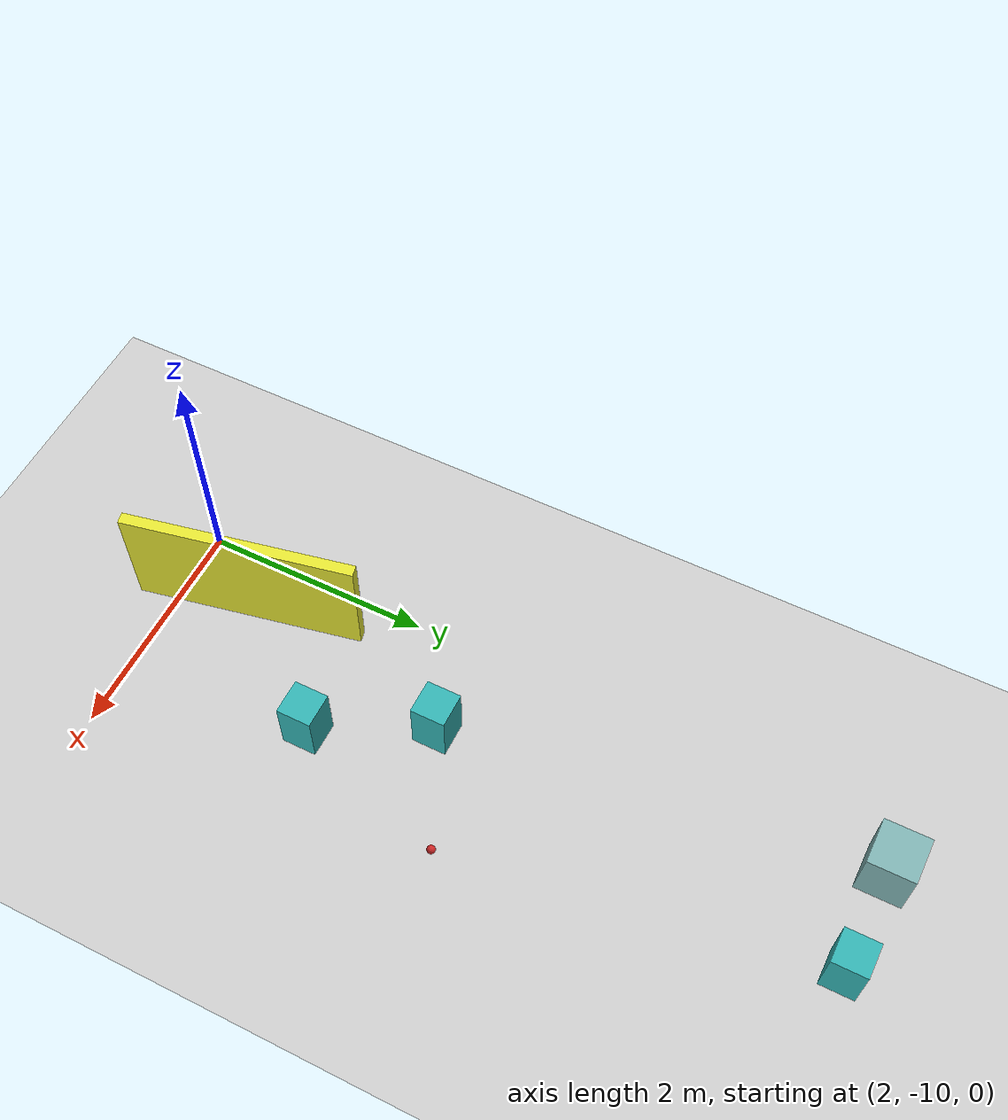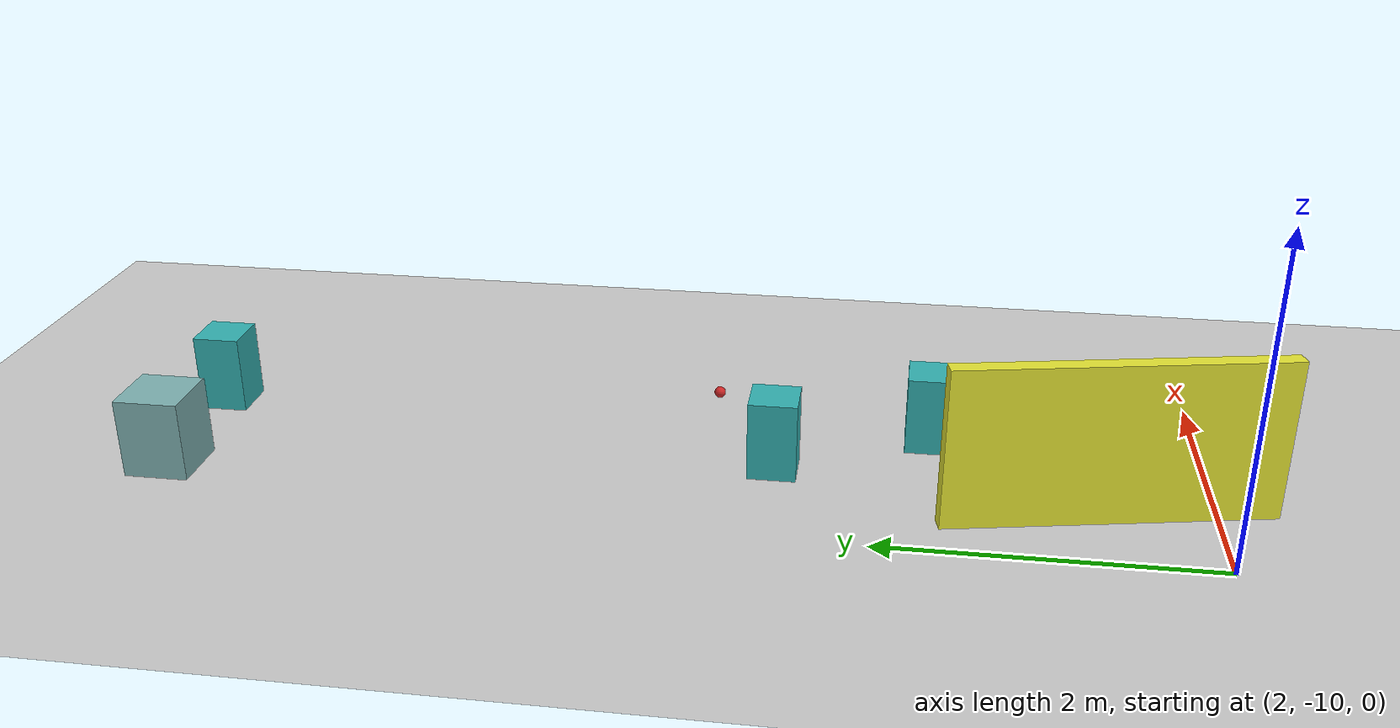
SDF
<sdf version="1.7">
 <world name="default">
  <model name="ground_plane">
   <static>1</static>
   <link name="link">
    <collision name="collision">
     <geometry><plane><normal>0 0 1</normal><size>100 100</size></plane></geometry>
     <surface><friction><ode><mu>100</mu><mu2>50</mu2></ode></friction></surface>
    </collision>
    <visual name="visual">
     <cast_shadows>0</cast_shadows>
     <geometry><plane><normal>0 0 1</normal><size>100 100</size></plane></geometry>
     <material>
      <script><uri>file://media/materials/scripts/gazebo.material</uri><name>Gazebo/Grey</name></script>
     </material>
    </visual>
   </link>
  </model>
  <model name="fl4sr_real_arena_8_target">
   <model name="target_ball_2">
    <link name="link">
     <pose>0 0 0.0375 0 -0 0</pose>
     <inertial>
      <mass>0.1467</mass>
      <inertia>
       <ixx>8.25187e-05</ixx>
       <ixy>0</ixy>
       <ixz>0</ixz>
       <iyy>8.25187e-05</iyy>
       <iyz>0</iyz>
       <izz>8.25187e-05</izz>
      </inertia>
     </inertial>
     <velocity_decay><linear>0</linear><angular>0.005</angular></velocity_decay>
     <visual name="visual">
      <geometry><sphere><radius>0.0375</radius></sphere></geometry>
      <material>
       <script><uri>file://media/materials/scripts/gazebo.material</uri><name>Gazebo/Red</name></script>
       <shader type="pixel"/>
      </material>
     </visual>
     <collision name="collision">
      <geometry><sphere><radius>0.0375</radius></sphere></geometry>
      <surface>
       <friction>
        <ode><mu>1</mu><mu2>1</mu2><fdir1>0 0 0</fdir1><slip1>0</slip1><slip2>0</slip2></ode>
        <torsional>
         <coefficient>1</coefficient>
         <patch_radius>0</patch_radius>
         <surface_radius>0.01</surface_radius>
         <use_patch_radius>0</use_patch_radius>
         <ode><slip>0</slip></ode>
        </torsional>
       </friction>
       <bounce><restitution_coefficient>0</restitution_coefficient><threshold>1e+06</threshold></bounce>
       <contact>
        <collide_without_contact>0</collide_without_contact>
        <collide_without_contact_bitmask>1</collide_without_contact_bitmask>
        <collide_bitmask>1</collide_bitmask>
        <ode>
         <soft_cfm>0</soft_cfm>
         <soft_erp>0.2</soft_erp>
         <kp>100000</kp>
         <kd>100</kd>
         <max_vel>100</max_vel>
         <min_depth>0.001</min_depth>
        </ode>
        <bullet>
         <split_impulse>1</split_impulse>
         <split_impulse_penetration_threshold>-0.01</split_impulse_penetration_threshold>
         <soft_cfm>0</soft_cfm>
         <soft_erp>0.2</soft_erp>
         <kp>100000</kp>
         <kd>100</kd>
        </bullet>
       </contact>
      </surface>
     </collision>
    </link>
    <static>0</static>
    <pose>2.0925 -7.77644 0 0 -0 0</pose>
   </model>
   <static>0</static>
   <pose>1.69407 0.837481 0 0 -0 0</pose>
  </model>
  <model name="unit_box_0.4_1_clone">
   <model name="unit_box_0.4">
    <link name="link">
     <inertial>
      <mass>1</mass>
      <inertia>
       <ixx>0.166667</ixx>
       <ixy>0</ixy>
       <ixz>0</ixz>
       <iyy>0.166667</iyy>
       <iyz>0</iyz>
       <izz>0.166667</izz>
      </inertia>
     </inertial>
     <visual name="visual">
      <geometry><box><size>0.4 0.4 0.5</size></box></geometry>
      <material>
       <script><name>Gazebo/Grey</name><uri>file://media/materials/scripts/gazebo.material</uri></script>
       <shader type="pixel"><normal_map>__default__</normal_map></shader>
       <ambient>0.7 0.8 0.4 1</ambient>
       <diffuse>0.5 0.7 0.7 1</diffuse>
       <specular>0.01 0.01 0.01 1</specular>
       <emissive>0 0 0 1</emissive>
      </material>
     </visual>
     <collision name="collision">
      <geometry><box><size>0.4 0.4 0.5</size></box></geometry>
      <surface>
       <friction>
        <ode><mu>1</mu><mu2>1</mu2><fdir1>0 0 0</fdir1><slip1>0</slip1><slip2>0</slip2></ode>
        <torsional>
         <coefficient>1</coefficient>
         <patch_radius>0</patch_radius>
         <surface_radius>0</surface_radius>
         <use_patch_radius>1</use_patch_radius>
         <ode><slip>0</slip></ode>
        </torsional>
       </friction>
       <bounce><restitution_coefficient>0</restitution_coefficient><threshold>1e+06</threshold></bounce>
       <contact>
        <collide_without_contact>0</collide_without_contact>
        <collide_without_contact_bitmask>1</collide_without_contact_bitmask>
        <collide_bitmask>1</collide_bitmask>
        <ode>
         <soft_cfm>0</soft_cfm>
         <soft_erp>0.2</soft_erp>
         <kp>1e+13</kp>
         <kd>1</kd>
         <max_vel>0.01</max_vel>
         <min_depth>0</min_depth>
        </ode>
        <bullet>
         <split_impulse>1</split_impulse>
         <split_impulse_penetration_threshold>-0.01</split_impulse_penetration_threshold>
         <soft_cfm>0</soft_cfm>
         <soft_erp>0.2</soft_erp>
         <kp>1e+13</kp>
         <kd>1</kd>
        </bullet>
       </contact>
      </surface>
     </collision>
    </link>
    <static>0</static>
    <pose>-3e-06 2.5e-05 0 0 -0 0</pose>
   </model>
   <static>1</static>
   <pose>2.37059 -3.67735 0.25 0 -0 0</pose>
  </model>
  <model name="unit_box_0.3_0_clone_2_clone">
   <model name="unit_box_0.3">
    <link name="link">
     <inertial>
      <mass>1</mass>
      <inertia>
       <ixx>0.166667</ixx>
       <ixy>0</ixy>
       <ixz>0</ixz>
       <iyy>0.166667</iyy>
       <iyz>0</iyz>
       <izz>0.166667</izz>
      </inertia>
     </inertial>
     <visual name="visual">
      <geometry><box><size>0.3 0.3 0.5</size></box></geometry>
      <material>
       <script><name>Gazebo/Grey</name><uri>file://media/materials/scripts/gazebo.material</uri></script>
       <shader type="pixel"><normal_map>__default__</normal_map></shader>
       <ambient>0.2 0.7 0.7 1</ambient>
       <diffuse>0.7 0.7 0.7 1</diffuse>
       <specular>0.01 0.01 0.01 1</specular>
       <emissive>0 0 0 1</emissive>
      </material>
     </visual>
     <collision name="collision">
      <geometry><box><size>0.3 0.3 0.5</size></box></geometry>
      <surface>
       <friction>
        <ode><mu>1</mu><mu2>1</mu2><fdir1>0 0 0</fdir1><slip1>0</slip1><slip2>0</slip2></ode>
        <torsional>
         <coefficient>1</coefficient>
         <patch_radius>0</patch_radius>
         <surface_radius>0</surface_radius>
         <use_patch_radius>1</use_patch_radius>
         <ode><slip>0</slip></ode>
        </torsional>
       </friction>
       <bounce><restitution_coefficient>0</restitution_coefficient><threshold>1e+06</threshold></bounce>
       <contact>
        <collide_without_contact>0</collide_without_contact>
        <collide_without_contact_bitmask>1</collide_without_contact_bitmask>
        <collide_bitmask>1</collide_bitmask>
        <ode>
         <soft_cfm>0</soft_cfm>
         <soft_erp>0.2</soft_erp>
         <kp>1e+13</kp>
         <kd>1</kd>
         <max_vel>0.01</max_vel>
         <min_depth>0</min_depth>
        </ode>
        <bullet>
         <split_impulse>1</split_impulse>
         <split_impulse_penetration_threshold>-0.01</split_impulse_penetration_threshold>
         <soft_cfm>0</soft_cfm>
         <soft_erp>0.2</soft_erp>
         <kp>1e+13</kp>
         <kd>1</kd>
        </bullet>
       </contact>
      </surface>
     </collision>
    </link>
    <static>0</static>
    <pose>1e-06 2e-06 0 0 -0 0</pose>
   </model>
   <static>1</static>
   <pose>3.2781 -3.69737 0.25 0 0 -1e-06</pose>
  </model>
  <model name="unit_box_0.3_0_clone_4_clone_2">
   <model name="unit_box_0.3">
    <link name="link">
     <inertial>
      <mass>1</mass>
      <inertia>
       <ixx>0.166667</ixx>
       <ixy>0</ixy>
       <ixz>0</ixz>
       <iyy>0.166667</iyy>
       <iyz>0</iyz>
       <izz>0.166667</izz>
      </inertia>
     </inertial>
     <visual name="visual">
      <geometry><box><size>0.3 0.3 0.5</size></box></geometry>
      <material>
       <script><name>Gazebo/Grey</name><uri>file://media/materials/scripts/gazebo.material</uri></script>
       <shader type="pixel"><normal_map>__default__</normal_map></shader>
       <ambient>0.2 0.7 0.7 1</ambient>
       <diffuse>0.7 0.7 0.7 1</diffuse>
       <specular>0.01 0.01 0.01 1</specular>
       <emissive>0 0 0 1</emissive>
      </material>
     </visual>
     <collision name="collision">
      <geometry><box><size>0.3 0.3 0.5</size></box></geometry>
      <surface>
       <friction>
        <ode><mu>1</mu><mu2>1</mu2><fdir1>0 0 0</fdir1><slip1>0</slip1><slip2>0</slip2></ode>
        <torsional>
         <coefficient>1</coefficient>
         <patch_radius>0</patch_radius>
         <surface_radius>0</surface_radius>
         <use_patch_radius>1</use_patch_radius>
         <ode><slip>0</slip></ode>
        </torsional>
       </friction>
       <bounce><restitution_coefficient>0</restitution_coefficient><threshold>1e+06</threshold></bounce>
       <contact>
        <collide_without_contact>0</collide_without_contact>
        <collide_without_contact_bitmask>1</collide_without_contact_bitmask>
        <collide_bitmask>1</collide_bitmask>
        <ode>
         <soft_cfm>0</soft_cfm>
         <soft_erp>0.2</soft_erp>
         <kp>1e+13</kp>
         <kd>1</kd>
         <max_vel>0.01</max_vel>
         <min_depth>0</min_depth>
        </ode>
        <bullet>
         <split_impulse>1</split_impulse>
         <split_impulse_penetration_threshold>-0.01</split_impulse_penetration_threshold>
         <soft_cfm>0</soft_cfm>
         <soft_erp>0.2</soft_erp>
         <kp>1e+13</kp>
         <kd>1</kd>
        </bullet>
       </contact>
      </surface>
     </collision>
    </link>
    <static>0</static>
    <pose>1e-06 2e-06 0 0 -0 0</pose>
   </model>
   <static>1</static>
   <pose>3.30956 -8.33325 0.25 0 -0 0</pose>
  </model>
  <model name="wooden_wall_2_1_clone_clone">
   <link name="link_1">
    <inertial>
     <mass>1</mass>
     <inertia>
      <ixx>0.166667</ixx>
      <ixy>0</ixy>
      <ixz>0</ixz>
      <iyy>0.166667</iyy>
      <iyz>0</iyz>
      <izz>0.166667</izz>
     </inertia>
    </inertial>
    <visual name="visual">
     <geometry><box><size>2 0.1 1</size></box></geometry>
     <material>
      <lighting>1</lighting>
      <script><uri>file://media/materials/scripts/gazebo.material</uri><name>Gazebo/Grey</name></script>
      <shader type="pixel"><normal_map>__default__</normal_map></shader>
      <ambient>0.9 0.9 0.2 1</ambient>
      <diffuse>0.7 0.7 0.7 1</diffuse>
      <specular>0.01 0.01 0.01 1</specular>
      <emissive>0 0 0 1</emissive>
     </material>
    </visual>
    <collision name="collision">
     <geometry><box><size>2 0.1 1</size></box></geometry>
     <surface>
      <friction>
       <ode><mu>1</mu><mu2>1</mu2><fdir1>0 0 0</fdir1><slip1>0</slip1><slip2>0</slip2></ode>
       <torsional>
        <coefficient>1</coefficient>
        <patch_radius>0</patch_radius>
        <surface_radius>0</surface_radius>
        <use_patch_radius>1</use_patch_radius>
        <ode><slip>0</slip></ode>
       </torsional>
      </friction>
      <bounce><restitution_coefficient>0</restitution_coefficient><threshold>1e+06</threshold></bounce>
      <contact>
       <collide_without_contact>0</collide_without_contact>
       <collide_without_contact_bitmask>1</collide_without_contact_bitmask>
       <collide_bitmask>1</collide_bitmask>
       <ode>
        <soft_cfm>0</soft_cfm>
        <soft_erp>0.2</soft_erp>
        <kp>1e+13</kp>
        <kd>1</kd>
        <max_vel>0.01</max_vel>
        <min_depth>0</min_depth>
       </ode>
       <bullet>
        <split_impulse>1</split_impulse>
        <split_impulse_penetration_threshold>-0.01</split_impulse_penetration_threshold>
        <soft_cfm>0</soft_cfm>
        <soft_erp>0.2</soft_erp>
        <kp>1e+13</kp>
        <kd>1</kd>
       </bullet>
      </contact>
     </surface>
    </collision>
   </link>
   <static>1</static>
   <pose>2.49815 -9.36495 0.499987 6e-06 1.1e-05 1.77408</pose>
  </model>
  <model name="unit_box_0.3_0_clone_4_clone_1_clone">
   <model name="unit_box_0.3">
    <link name="link">
     <inertial>
      <mass>1</mass>
      <inertia>
       <ixx>0.166667</ixx>
       <ixy>0</ixy>
       <ixz>0</ixz>
       <iyy>0.166667</iyy>
       <iyz>0</iyz>
       <izz>0.166667</izz>
      </inertia>
     </inertial>
     <visual name="visual">
      <geometry><box><size>0.3 0.3 0.5</size></box></geometry>
      <material>
       <script><name>Gazebo/Grey</name><uri>file://media/materials/scripts/gazebo.material</uri></script>
       <shader type="pixel"><normal_map>__default__</normal_map></shader>
       <ambient>0.2 0.7 0.7 1</ambient>
       <diffuse>0.7 0.7 0.7 1</diffuse>
       <specular>0.01 0.01 0.01 1</specular>
       <emissive>0 0 0 1</emissive>
      </material>
     </visual>
     <collision name="collision">
      <geometry><box><size>0.3 0.3 0.5</size></box></geometry>
      <surface>
       <friction>
        <ode><mu>1</mu><mu2>1</mu2><fdir1>0 0 0</fdir1><slip1>0</slip1><slip2>0</slip2></ode>
        <torsional>
         <coefficient>1</coefficient>
         <patch_radius>0</patch_radius>
         <surface_radius>0</surface_radius>
         <use_patch_radius>1</use_patch_radius>
         <ode><slip>0</slip></ode>
        </torsional>
       </friction>
       <bounce><restitution_coefficient>0</restitution_coefficient><threshold>1e+06</threshold></bounce>
       <contact>
        <collide_without_contact>0</collide_without_contact>
        <collide_without_contact_bitmask>1</collide_without_contact_bitmask>
        <collide_bitmask>1</collide_bitmask>
        <ode>
         <soft_cfm>0</soft_cfm>
         <soft_erp>0.2</soft_erp>
         <kp>1e+13</kp>
         <kd>1</kd>
         <max_vel>0.01</max_vel>
         <min_depth>0</min_depth>
        </ode>
        <bullet>
         <split_impulse>1</split_impulse>
         <split_impulse_penetration_threshold>-0.01</split_impulse_penetration_threshold>
         <soft_cfm>0</soft_cfm>
         <soft_erp>0.2</soft_erp>
         <kp>1e+13</kp>
         <kd>1</kd>
        </bullet>
       </contact>
      </surface>
     </collision>
    </link>
    <static>0</static>
    <pose>1e-06 2e-06 0 0 -0 0</pose>
   </model>
   <static>1</static>
   <pose>2.82929 -7.38834 0.25 0 -0 1e-06</pose>
  </model>
 </world>
</sdf>
